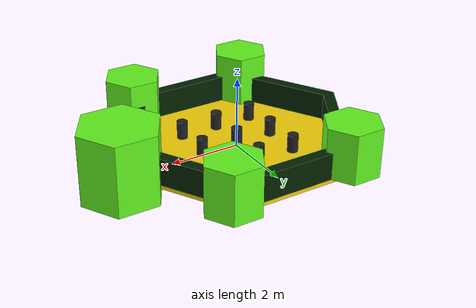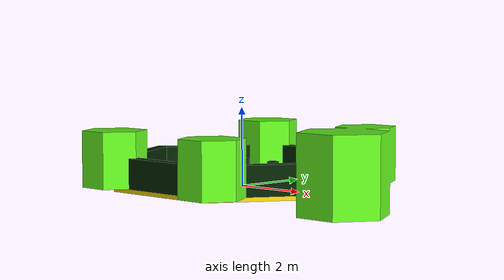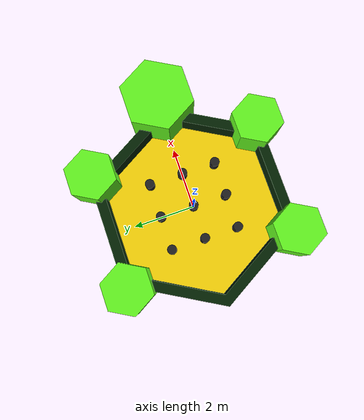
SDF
<?xml version="1.0"?>

<sdf version="1.6">
  <model name="turtlebot_env">
    <pose>0.0 0.0 0.0 0.0 0.0 0.0</pose>
    <static>true</static>

    <link name="bartender_main_link">
      <pose>0.0 0.0 0.05 0.0 0.0 0.0</pose>

      <collision name="collision">
        <pose>0 0 0 0 0 0</pose>
        <geometry>
          <mesh>
            <uri>model://turtlebot_env/meshes/turtlebot_env.dae</uri>
          </mesh>
        </geometry>
      </collision>

      <visual name="visual_walls">
        <pose>0 0 0 0 0 0</pose>
        <geometry>
          <mesh>
            <uri>model://turtlebot_env/meshes/turtlebot_env.dae</uri>
          </mesh>
        </geometry>
      </visual>

      <visual name="visual_floor">
        <pose>0 0 0 0 0 0</pose>
        <geometry>
          <mesh>
            <uri>model://turtlebot_env/meshes/turtlebot_env_only_floor.dae</uri>
          </mesh>
        </geometry>
      </visual>
    </link>

  </model>
</sdf>
